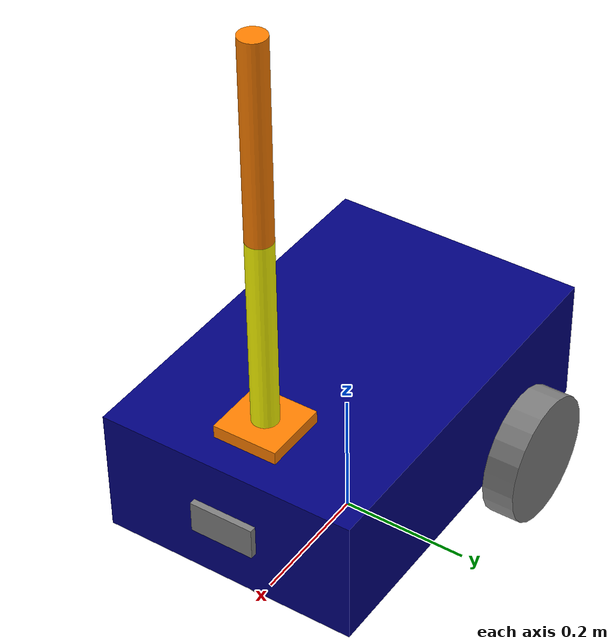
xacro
<?xml version="1.0"?>
<robot name="my_robot" xmlns:xacro="http://www.ros.org/wiki/xacro">

    <xacro:include filename="common_properties.xacro" />
    <xacro:include filename="robot_arm.xacro" />
    <xacro:include filename="mobile_base.xacro" />
    <xacro:include filename="camera.xacro" />

    <joint name="base_arm_joint" type="fixed">
        <parent link="base_link" />
        <child link="arm_base_link" />
        <origin xyz="${base_length / 3.0} 0 ${base_height}" rpy="0 0 0" />
    </joint>

</robot>

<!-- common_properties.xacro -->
<robot xmlns:xacro="http://www.ros.org/wiki/xacro">

    <material name="blue">
        <color rgba="0 0 0.5 1" />
    </material>

    <material name="grey">
        <color rgba="0.5 0.5 0.5 1" />
    </material>

    <material name="orange">
        <color rgba="1.0 0.5 0.0 1" />
    </material>

    <material name="yellow">
        <color rgba="1.0 1.0 0.0 1" />
    </material>

    <xacro:macro name="box_inertia" params="m l w h xyz rpy">
        <inertial>
            <origin xyz="${xyz}" rpy="${rpy}" />
            <mass value="${m}" />
            <inertia ixx="${(m/12) * (h*h + l*l)}" ixy="0" ixz="0"
                     iyy="${(m/12) * (w*w + l*l)}" iyz="0"
                     izz="${(m/12) * (w*w + h*h)}" />
        </inertial>
    </xacro:macro>

    <xacro:macro name="cylinder_inertia" params="m r h xyz rpy">
        <inertial>
            <origin xyz="${xyz}" rpy="${rpy}" />
            <mass value="${m}" />
            <inertia ixx="${(m/12) * (3*r*r + h*h)}" ixy="0" ixz="0"
                     iyy="${(m/12) * (3*r*r + h*h)}" iyz="0"
                     izz="${(m/2) * (r*r)}" />
        </inertial>
    </xacro:macro>

    <xacro:macro name="sphere_inertia" params="m r xyz rpy">
        <inertial>
            <origin xyz="${xyz}" rpy="${rpy}" />
            <mass value="${m}" />
            <inertia ixx="${(2/5) * m * r * r}" ixy="0" ixz="0"
                     iyy="${(2/5) * m * r * r}" iyz="0"
                     izz="${(2/5) * m * r * r}" />
        </inertial>
    </xacro:macro>

</robot>

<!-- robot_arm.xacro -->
<robot xmlns:xacro="http://www.ros.org/wiki/xacro">

    <xacro:property name="arm_base_length" value="0.1" />
    <xacro:property name="arm_base_width" value="0.1" />
    <xacro:property name="arm_base_height" value="0.02" />
    <xacro:property name="forearm_radius" value="0.02" />
    <xacro:property name="forearm_length" value="0.3" />
    <xacro:property name="hand_radius" value="0.02" />
    <xacro:property name="hand_length" value="0.3" />

    <link name="arm_base_link">
        <visual>
            <geometry>
                <box size="${arm_base_length} ${arm_base_width} ${arm_base_height}" />
            </geometry>
            <origin xyz="0 0 ${arm_base_height/2.0}" rpy="0 0 0" />
            <material name="orange" />
        </visual>
        <collision>
            <geometry>
                <box size="${arm_base_length} ${arm_base_width} ${arm_base_height}" />
            </geometry>
            <origin xyz="0 0 ${arm_base_height/2.0}" rpy="0 0 0" />
        </collision>
        <xacro:box_inertia m="0.5" w="${2*arm_base_length}" h="${2*arm_base_width}" l="${2*arm_base_height}"
                           xyz="0 0 ${arm_base_height/2.0}" rpy="0 0 0" />
    </link>

    <link name="forearm_link">
        <visual>
            <geometry>
                <cylinder radius="${forearm_radius}" length="${forearm_length}" />
            </geometry>
            <origin xyz="0 0 ${forearm_length/2.0}" rpy="0 0 0" />
            <material name="yellow" />
        </visual>
        <collision>
            <geometry>
                <cylinder radius="${forearm_radius}" length="${forearm_length}" />
            </geometry>
            <origin xyz="0 0 ${forearm_length/2.0}" rpy="0 0 0" />
        </collision>
        <xacro:cylinder_inertia m="1.0" r="${forearm_radius}" h="${forearm_length}"
                                    xyz="0 0 ${forearm_length/2.0}" rpy="0 0 0" />
    </link>

    <link name="hand_link">
        <visual>
            <geometry>
                <cylinder radius="${hand_radius}" length="${hand_length}" />
            </geometry>
            <origin xyz="0 0 ${hand_length/2.0}" rpy="0 0 0" />
            <material name="orange" />
        </visual>
        <collision>
            <geometry>
                <cylinder radius="${hand_radius}" length="${hand_length}" />
            </geometry>
            <origin xyz="0 0 ${hand_length/2.0}" rpy="0 0 0" />
        </collision>
        <xacro:cylinder_inertia m="1.0" r="${hand_radius}" h="${hand_length}"
                                    xyz="0 0 ${hand_length/2.0}" rpy="0 0 0" />
    </link>

    <joint name="arm_base_forearm_joint" type="revolute">
        <parent link="arm_base_link" />
        <child link="forearm_link" />
        <origin xyz="0 0 ${arm_base_height}" rpy="0 0 0" />
        <axis xyz="0 1 0" />
        <limit lower="0" upper="${pi/2.0}" effort="0" velocity="100"/>
    </joint>

    <joint name="forearm_hand_joint" type="revolute">
        <parent link="forearm_link" />
        <child link="hand_link" />
        <origin xyz="0 0 ${forearm_length}" rpy="0 0 0" />
        <axis xyz="0 1 0" />
        <limit lower="0" upper="${pi/2.0}" effort="0" velocity="100"/>
    </joint>

    <gazebo>

        <plugin
            filename="ignition-gazebo-joint-state-publisher-system"
            name="ignition::gazebo::systems::JointStatePublisher">
            <joint_name>arm_base_forearm_joint</joint_name>
            <joint_name>forearm_hand_joint</joint_name>
            <topic>joint_states</topic>
            <update_rate>10</update_rate>
        </plugin>

        <plugin
            filename="libignition-gazebo-pose-publisher-system"
            name="ignition::gazebo::systems::PosePublisher">
            <publish_link_pose>true</publish_link_pose>
            <topic>pose</topic>
            <use_pose_vector_msg>true</use_pose_vector_msg>
            <static_publisher>true</static_publisher>
            <static_update_frequency>2</static_update_frequency>
        </plugin>

        <plugin
            filename="libignition-gazebo-joint-trajectory-controller-system.so"
            name="ignition::gazebo::systems::JointTrajectoryController">
            <joint_name>arm_base_forearm_joint</joint_name>
            <joint_name>forearm_hand_joint</joint_name>
            <topic>trajectory_control</topic>
            <update_rate>20</update_rate>
        </plugin>

    </gazebo>

</robot>

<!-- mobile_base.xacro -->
<robot xmlns:xacro="http://www.ros.org/wiki/xacro">

    <xacro:property name="base_length" value="0.6" />
    <xacro:property name="base_width" value="0.4" />
    <xacro:property name="base_height" value="0.2" />
    <xacro:property name="wheel_radius" value="0.1" />
    <xacro:property name="wheel_length" value="0.05" />

    <link name="base_link">
        <visual>
            <geometry>
                <box size="${base_length} ${base_width} ${base_height}" />
            </geometry>
            <origin xyz="0 0 ${base_height / 2.0}" rpy="0 0 0" />
            <material name="blue" />
        </visual>
        <collision>
            <geometry>
                <box size="${base_length} ${base_width} ${base_height}" />
            </geometry>
            <origin xyz="0 0 ${base_height / 2.0}" rpy="0 0 0" />
        </collision>
        <xacro:box_inertia m="5.0" w="${base_length}" h="${base_width}" l="${base_height}"
                           xyz="0 0 ${base_height / 2.0}" rpy="0 0 0" />
    </link>

    <link name="left_wheel_link">
        <visual>
            <geometry>
                <cylinder radius="${wheel_radius}" length="${wheel_length}" />
            </geometry>
            <origin xyz="0 0 0" rpy="${pi / 2.0} 0 0" />
            <material name="grey" />
        </visual>
        <collision>
            <geometry>
                <cylinder radius="${wheel_radius}" length="${wheel_length}" />
            </geometry>
            <origin xyz="0 0 0" rpy="${pi / 2.0} 0 0" />
        </collision>
        <xacro:cylinder_inertia m="1.0" r="${wheel_radius}" h="${wheel_length}"
                                    xyz="0 0 0" rpy="${pi / 2.0} 0 0" />
    </link>

    <link name="right_wheel_link">
        <visual>
            <geometry>
                <cylinder radius="${wheel_radius}" length="${wheel_length}" />
            </geometry>
            <origin xyz="0 0 0" rpy="${pi / 2.0} 0 0" />
            <material name="grey" />
        </visual>
        <collision>
            <geometry>
                <cylinder radius="${wheel_radius}" length="${wheel_length}" />
            </geometry>
            <origin xyz="0 0 0" rpy="${pi / 2.0} 0 0" />
        </collision>
        <xacro:cylinder_inertia m="1.0" r="${wheel_radius}" h="${wheel_length}"
                                    xyz="0 0 0" rpy="${pi / 2.0} 0 0" />
    </link>

    <link name="caster_wheel_link">
        <visual>
            <geometry>
                <sphere radius="${wheel_radius / 2.0}" />
            </geometry>
            <origin xyz="0 0 0" rpy="0 0 0" />
            <material name="grey" />
        </visual>
        <collision>
            <geometry>
                <sphere radius="${wheel_radius / 2.0}" />
            </geometry>
            <origin xyz="0 0 0" rpy="0 0 0" />
        </collision>
        <xacro:sphere_inertia m="0.5" r="${wheel_radius / 2.0}"
                              xyz="0 0 0" rpy="0 0 0" />
    </link>

    <link name="base_footprint" />

    <joint name="base_joint" type="fixed">
        <parent link="base_footprint" />
        <child link="base_link" />
        <origin xyz="0 0 ${wheel_radius}" rpy="0 0 0"/>
    </joint>

    <joint name="base_right_wheel_joint" type="continuous">
        <parent link="base_link" />
        <child link="right_wheel_link" />
        <origin xyz="${-base_length / 4.0} ${-(base_width + wheel_length) / 2.0} 0" rpy="0 0 0" />
        <axis xyz="0 1 0" />
    </joint>

    <joint name="base_left_wheel_joint" type="continuous">
        <parent link="base_link" />
        <child link="left_wheel_link" />
        <origin xyz="${-base_length / 4.0} ${(base_width + wheel_length) / 2.0} 0" rpy="0 0 0" />
        <axis xyz="0 1 0" />
    </joint>

    <joint name="base_caster_wheel_joint" type="fixed">
        <parent link="base_link" />
        <child link="caster_wheel_link" />
        <origin xyz="${base_length / 3.0} 0 ${-wheel_radius / 2.0}" rpy="0 0 0" />
    </joint>

    <gazebo reference="caster_wheel_link">
        <mu1 value="0.1"/>
        <mu2 value="0.1"/>
    </gazebo>

    <gazebo>

        <plugin filename="libignition-gazebo-diff-drive-system.so" name="ignition::gazebo::systems::DiffDrive">
            <left_joint>base_left_wheel_joint</left_joint>
            <right_joint>base_right_wheel_joint</right_joint>
            <wheel_separation>0.45</wheel_separation>
            <wheel_radius>0.1</wheel_radius>
            <odom_publish_frequency>20</odom_publish_frequency>
            <odom_topic>odom</odom_topic>
            <odom_frame>odom</odom_frame>
            <tf_topic>tf</tf_topic>
            <publish_odom>true</publish_odom>
            <publish_odom_tf>true</publish_odom_tf>
            <publish_wheel_tf>true</publish_wheel_tf>
            <frame_id>odom</frame_id>
            <child_frame_id>base_footprint</child_frame_id>
            <robot_base_frame>base_footprint</robot_base_frame>
            <topic>cmd_vel</topic>
        </plugin>

        <plugin filename="ignition-gazebo-joint-state-publisher-system" name="ignition::gazebo::systems::JointStatePublisher">
            <joint_name>base_left_wheel_joint</joint_name>
            <joint_name>base_right_wheel_joint</joint_name>
            <topic>joint_states</topic>
        </plugin>

    </gazebo>

</robot>

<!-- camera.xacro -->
<robot xmlns:xacro="http://www.ros.org/wiki/xacro">

    <xacro:property name="camera_length" value="0.01" />
    <xacro:property name="camera_width" value="0.1" />
    <xacro:property name="camera_height" value="0.05" />

    <link name="camera_link">
        <visual>
            <geometry>
                <box size="${camera_length} ${camera_width} ${camera_height}" />
            </geometry>
            <material name="grey" />
        </visual>
        <collision>
            <geometry>
                <box size="${camera_length} ${camera_width} ${camera_height}" />
            </geometry>
            <origin xyz="0 0 0" rpy="0 0 0" />
        </collision>
        <xacro:box_inertia m="0.1" l="${camera_length}" w="${camera_width}" h="${camera_height}"
                           xyz="0 0 ${(base_height + camera_height) / 2.0}" rpy="0 0 0" />
    </link>

    <joint name="base_camera_joint" type="fixed">
        <parent link="base_link"/>
        <child link="camera_link"/>
        <origin xyz="${(base_length + camera_length) / 2.0} 0 ${base_height / 2.0}" rpy="0 0 0"/>
    </joint>

    <gazebo reference="camera_link">
            <material>Gazebo/Red</material>
            <sensor type="camera" name="camera_sensor">
                <update_rate>10.0</update_rate>
                <always_on>1</always_on>
                <visualize>true</visualize>
                <pose>0 0 0 0 0 0</pose>
                <topic>image</topic>
                <plugin filename="libignition-gazebo-sensors-system.so" name="ignition::gazebo::systems::Sensors">
                    <frame_name>camera_link</frame_name>
                </plugin>
            </sensor>
    </gazebo>

</robot>
